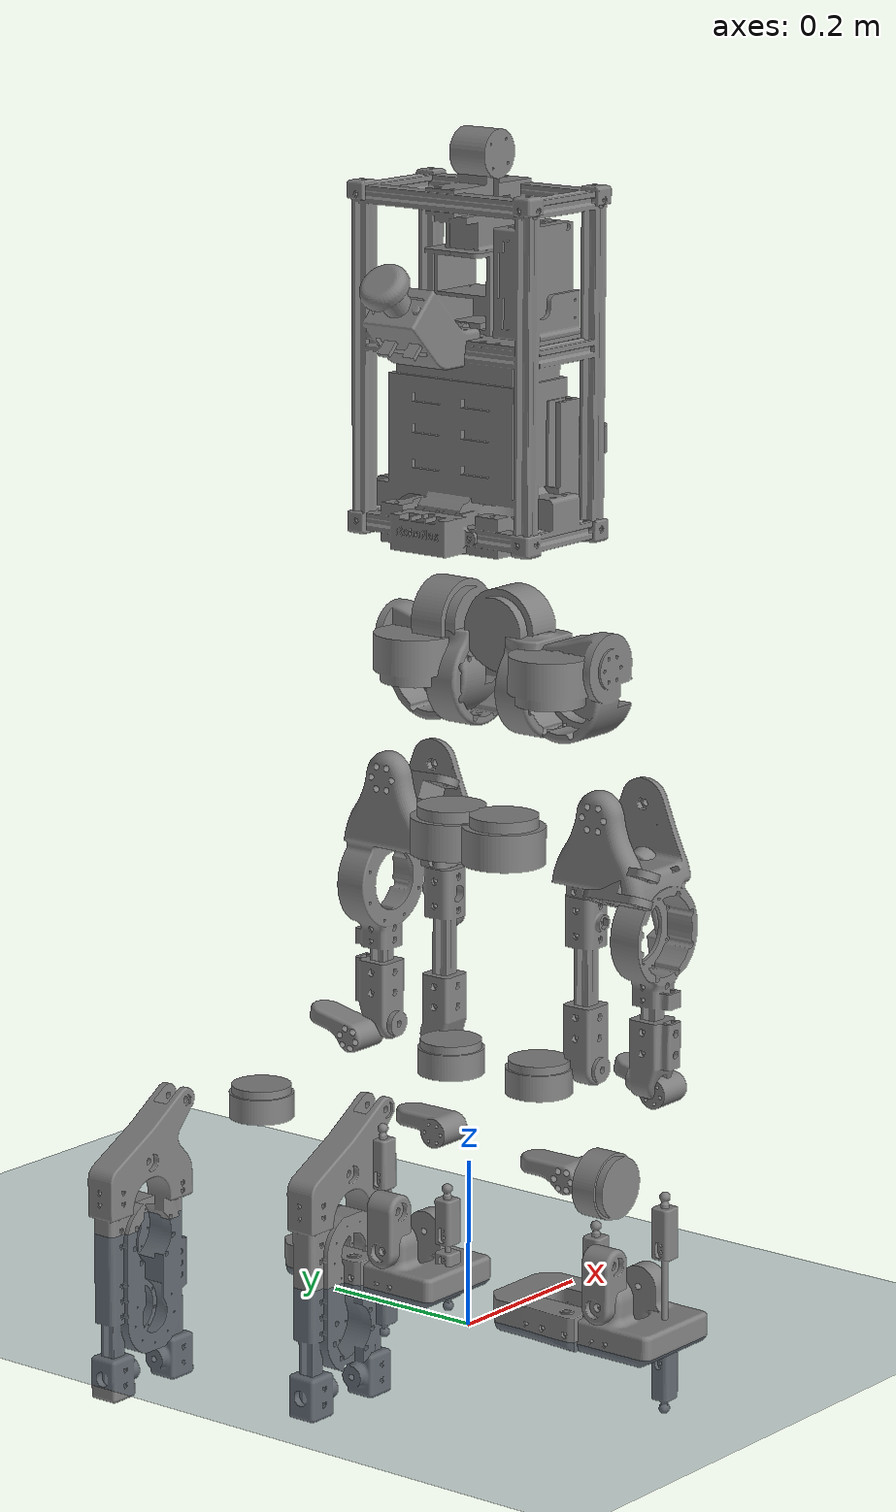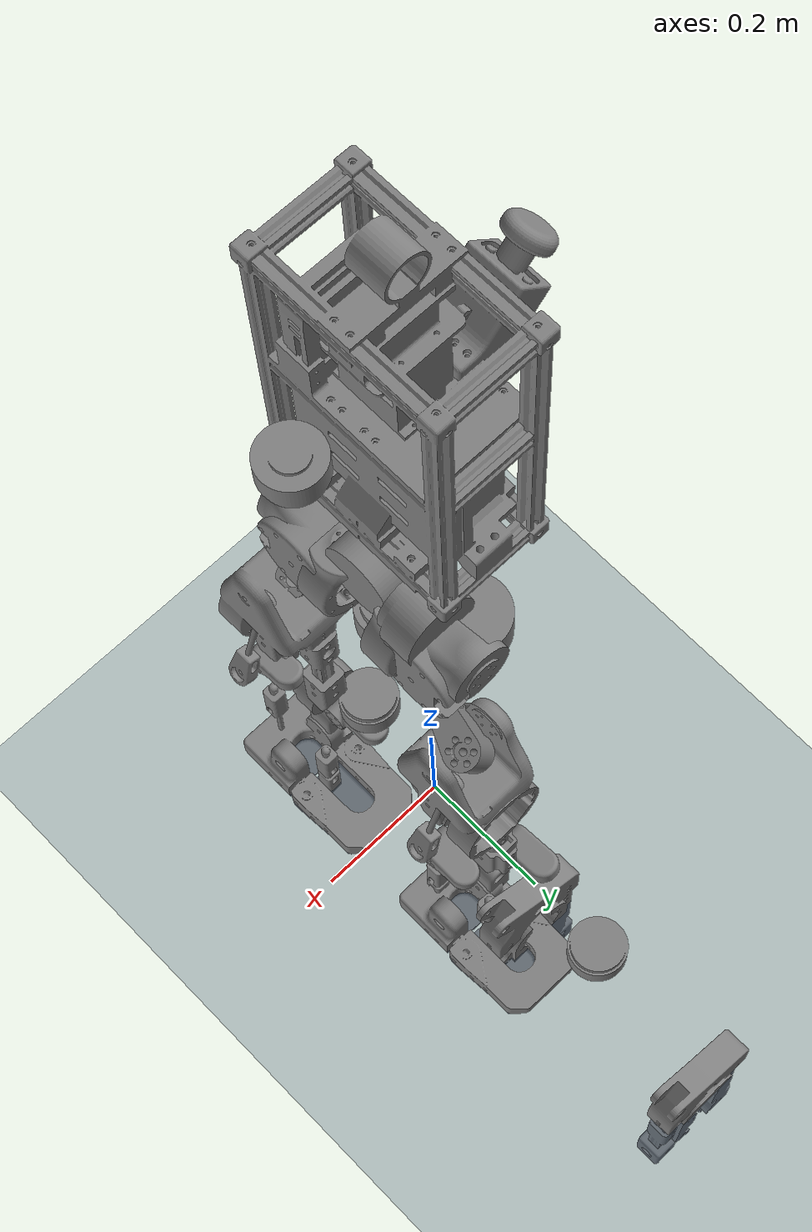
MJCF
<?xml version="1.0"?>
<mujoco model="robonex scene">
  <include file="robonex.xml"/>

  <statistic center="0 0 0.6" extent="1.2"/>

  <visual>
    <headlight diffuse="0.6 0.6 0.6" ambient="0.3 0.3 0.3" specular="0 0 0"/>
    <rgba haze="0.15 0.25 0.35 1"/>
    <global azimuth="140" elevation="-20"/>
  </visual>

  <asset>
    <texture type="skybox" builtin="gradient" rgb1="0.3 0.5 0.7" rgb2="0 0 0" width="512" height="3072"/>
    <texture type="2d" name="groundplane" builtin="checker" mark="edge" rgb1="0.2 0.3 0.4" rgb2="0.1 0.2 0.3"
      markrgb="0.8 0.8 0.8" width="300" height="300"/>
    <material name="groundplane" texture="groundplane" texuniform="true" texrepeat="5 5" reflectance="0.2"/>
  </asset>

  <worldbody>
    <light pos="0 0 3" dir="0 0 -1" directional="true"/>
    <geom name="floor" size="0 0 0.05" type="plane" material="groundplane" condim="3" contype="1" conaffinity="1" friction="0.6 0.6 0.001" solref="0.002 1" solimp="0.99 0.9999 0.0001"/>
  </worldbody>
</mujoco>

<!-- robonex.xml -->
<mujoco model="robonex">
  <compiler angle="radian" meshdir="../../meshes" autolimits="true"/>
  <option timestep="0.001" integrator="implicitfast" cone="elliptic" impratio="10"/>

  <default>
    <joint damping="0.01" armature="0"/>
    <default class="passive">
      <joint damping="0.01" armature="0"/>
    </default>
    <default class="act">
      <joint armature="0"/>
    </default>
    <default class="visual">
      <geom group="2" contype="0" conaffinity="0" density="0"/>
    </default>
    <default class="collision">
      <geom group="3" contype="1" conaffinity="1" condim="3" density="0" rgba="0.6 0.6 0.6 0.4" solref="0.002 1" solimp="0.99 0.9999 0.0001"/>
    </default>
    <default class="motor">
      <position kp="40" kv="2"/>
    </default>
  </default>

  <asset>
    <mesh name="base_link" file="base_link.stl" scale="0.001 0.001 0.001"/>
    <mesh name="l_ankle_coupler_link_a" file="l_ankle_coupler_link_a.stl" scale="0.001 0.001 0.001"/>
    <mesh name="l_ankle_coupler_link_b" file="l_ankle_coupler_link_b.stl" scale="0.001 0.001 0.001"/>
    <mesh name="l_ankle_crank_link_a" file="l_ankle_crank_link_a.stl" scale="0.001 0.001 0.001"/>
    <mesh name="l_ankle_crank_link_b" file="l_ankle_crank_link_b.stl" scale="0.001 0.001 0.001"/>
    <mesh name="l_ankle_link" file="l_ankle_link.stl" scale="0.001 0.001 0.001"/>
    <mesh name="l_foot" file="l_foot.stl" scale="0.001 0.001 0.001"/>
    <mesh name="l_hip_pitch_link" file="l_hip_pitch_link.stl" scale="0.001 0.001 0.001"/>
    <mesh name="l_hip_roll_link" file="l_hip_roll_link.stl" scale="0.001 0.001 0.001"/>
    <mesh name="l_hip_yaw_link" file="l_hip_yaw_link.stl" scale="0.001 0.001 0.001"/>
    <mesh name="l_knee_coupler_link" file="l_knee_coupler_link.stl" scale="0.001 0.001 0.001"/>
    <mesh name="l_knee_crank_link" file="l_knee_crank_link.stl" scale="0.001 0.001 0.001"/>
    <mesh name="l_knee_link" file="l_knee_link.stl" scale="0.001 0.001 0.001"/>
    <mesh name="r_ankle_coupler_link_a" file="r_ankle_coupler_link_a.stl" scale="0.001 0.001 0.001"/>
    <mesh name="r_ankle_coupler_link_b" file="r_ankle_coupler_link_b.stl" scale="0.001 0.001 0.001"/>
    <mesh name="r_ankle_crank_link_a" file="r_ankle_crank_link_a.stl" scale="0.001 0.001 0.001"/>
    <mesh name="r_ankle_crank_link_b" file="r_ankle_crank_link_b.stl" scale="0.001 0.001 0.001"/>
    <mesh name="r_ankle_link" file="r_ankle_link.stl" scale="0.001 0.001 0.001"/>
    <mesh name="r_foot" file="r_foot.stl" scale="0.001 0.001 0.001"/>
    <mesh name="r_hip_pitch_link" file="r_hip_pitch_link.stl" scale="0.001 0.001 0.001"/>
    <mesh name="r_hip_roll_link" file="r_hip_roll_link.stl" scale="0.001 0.001 0.001"/>
    <mesh name="r_hip_yaw_link" file="r_hip_yaw_link.stl" scale="0.001 0.001 0.001"/>
    <mesh name="r_knee_coupler_link" file="r_knee_coupler_link.stl" scale="0.001 0.001 0.001"/>
    <mesh name="r_knee_crank_link" file="r_knee_crank_link.stl" scale="0.001 0.001 0.001"/>
    <mesh name="r_knee_link" file="r_knee_link.stl" scale="0.001 0.001 0.001"/>
    <mesh name="rs02_l_ankle_a" file="rs02_l_ankle_a.stl" scale="0.001 0.001 0.001"/>
    <mesh name="rs02_l_ankle_b" file="rs02_l_ankle_b.stl" scale="0.001 0.001 0.001"/>
    <mesh name="rs02_l_hip_yaw" file="rs02_l_hip_yaw.stl" scale="0.001 0.001 0.001"/>
    <mesh name="rs02_r_ankle_a" file="rs02_r_ankle_a.stl" scale="0.001 0.001 0.001"/>
    <mesh name="rs02_r_ankle_b" file="rs02_r_ankle_b.stl" scale="0.001 0.001 0.001"/>
    <mesh name="rs02_r_hip_yaw" file="rs02_r_hip_yaw.stl" scale="0.001 0.001 0.001"/>
    <mesh name="rs03_l_hip_pitch" file="rs03_l_hip_pitch.stl" scale="0.001 0.001 0.001"/>
    <mesh name="rs03_l_hip_roll" file="rs03_l_hip_roll.stl" scale="0.001 0.001 0.001"/>
    <mesh name="rs03_l_knee" file="rs03_l_knee.stl" scale="0.001 0.001 0.001"/>
    <mesh name="rs03_r_hip_pitch" file="rs03_r_hip_pitch.stl" scale="0.001 0.001 0.001"/>
    <mesh name="rs03_r_hip_roll" file="rs03_r_hip_roll.stl" scale="0.001 0.001 0.001"/>
    <mesh name="rs03_r_knee" file="rs03_r_knee.stl" scale="0.001 0.001 0.001"/>
  </asset>

  <worldbody>
    <body name="base_link" pos="0 0 1.085">
      <freejoint name="root"/>
      <inertial pos="0.032843 0.000297 -0.045593" mass="6.80147" fullinertia="0.17694424 0.14872054 0.08710167 -5.475e-05 0.01914405 -0.00012648"/>
      <geom type="mesh" mesh="base_link" pos="0 0 0" class="visual"/>
      <geom type="mesh" mesh="base_link" pos="0 0 0" class="collision"/>
      <geom type="mesh" mesh="rs02_r_hip_yaw" pos="0.060424 -0.05 -0.17975" quat="-1.17016e-07 -0.67559 0.737277 1.277e-07" class="visual"/>
      <geom type="mesh" mesh="rs02_r_hip_yaw" pos="0.060424 -0.05 -0.17975" quat="-1.17016e-07 -0.67559 0.737277 1.277e-07" class="collision"/>
      <geom type="mesh" mesh="rs02_l_hip_yaw" pos="0.060424 0.05 -0.17975" quat="-1.17016e-07 -0.67559 0.737277 1.277e-07" class="visual"/>
      <geom type="mesh" mesh="rs02_l_hip_yaw" pos="0.060424 0.05 -0.17975" quat="-1.17016e-07 -0.67559 0.737277 1.277e-07" class="collision"/>
      <body name="l_hip_yaw_link" pos="0.060424 0.05 -0.20245">
        <joint name="l_hip_yaw_joint" type="hinge" axis="0 0 1" range="-1.65806 1.65806" armature="0.0042" frictionloss="0" damping="0" class="act"/>
        <inertial pos="-3.8e-05 0.023069 -0.059394" mass="0.9768" fullinertia="0.00108483 0.00144231 0.001013 -7.1e-07 -7.1e-07 2.234e-05"/>
        <geom type="mesh" mesh="l_hip_yaw_link" pos="2e-06 0.0001 -0.059" quat="-1.73205e-07 -0 0 1" class="visual"/>
        <geom type="mesh" mesh="l_hip_yaw_link" pos="2e-06 0.0001 -0.059" quat="-1.73205e-07 -0 0 1" class="collision"/>
        <geom type="mesh" mesh="rs03_l_hip_pitch" pos="2e-06 0.0194 -0.06001" quat="0.5 -0.5 -0.5 -0.5" class="visual"/>
        <geom type="mesh" mesh="rs03_l_hip_pitch" pos="2e-06 0.0194 -0.06001" quat="0.5 -0.5 -0.5 -0.5" class="collision"/>
        <body name="l_hip_pitch_link" pos="1e-06 0.0477 -0.0605">
          <joint name="l_hip_pitch_joint" type="hinge" axis="0 -1 0" range="-1.74533 1.74533" armature="0.02" frictionloss="0" damping="0" class="act"/>
          <inertial pos="-0.003785 0.060976 -0.032577" mass="1.04436" fullinertia="0.00161401 0.00123883 0.00118137 9.18e-06 -6.72e-06 6.937e-05"/>
          <geom type="mesh" mesh="l_hip_pitch_link" pos="-0.00455 0.0599 -0.02575" quat="-1.73205e-07 -0 0 1" class="visual"/>
          <geom type="mesh" mesh="l_hip_pitch_link" pos="-0.00455 0.0599 -0.02575" quat="-1.73205e-07 -0 0 1" class="collision"/>
          <geom type="mesh" mesh="rs03_l_hip_roll" pos="-0.0058 0.0623 -0.03351" quat="-1.22475e-07 -0.707107 1.22474e-07 -0.707107" class="visual"/>
          <geom type="mesh" mesh="rs03_l_hip_roll" pos="-0.0058 0.0623 -0.03351" quat="-1.22475e-07 -0.707107 1.22474e-07 -0.707107" class="collision"/>
          <body name="l_hip_roll_link" pos="0.0225 0.0623 -0.034">
            <joint name="l_hip_roll_joint" type="hinge" axis="-1 0 0" range="-2.14676 0.453786" armature="0.02" frictionloss="0" damping="0" class="act"/>
            <inertial pos="-0.034473 -0.032586 -0.198268" mass="1.71574" fullinertia="0.01832064 0.01711211 0.00412151 -1.851e-05 -6.908e-05 -0.00294612"/>
            <geom type="mesh" mesh="l_hip_roll_link" pos="-0.0348 -0.007 -0.16" quat="-1.73205e-07 0 -0 -1" class="visual"/>
            <geom type="mesh" mesh="l_hip_roll_link" pos="-0.0348 -0.007 -0.16" quat="-1.73205e-07 0 -0 -1" class="collision"/>
            <geom type="mesh" mesh="rs03_l_knee" pos="-0.03431 -0.0603 -0.255" quat="0.707107 -0.707107 0 0" class="visual"/>
            <geom type="mesh" mesh="rs03_l_knee" pos="-0.03431 -0.0603 -0.255" quat="0.707107 -0.707107 0 0" class="collision"/>
            <body name="l_knee_link" pos="-0.0348 -0.0255 -0.34">
              <joint name="l_knee_joint" type="hinge" axis="0 -1 0" range="-3.14159 3.14159" class="passive"/>
              <inertial pos="0.001621 0.025016 -0.172019" mass="1.71687" fullinertia="0.01717778 0.01952815 0.00292332 1.7e-07 -0.00118827 -1.549e-05"/>
              <geom type="mesh" mesh="l_knee_link" pos="0 0.42 -0.3696" class="visual"/>
              <geom type="mesh" mesh="l_knee_link" pos="0 0.42 -0.3696" class="collision"/>
              <geom type="mesh" mesh="rs02_l_ankle_a" pos="0 0.0252 -0.1445" quat="0.707107 -0.707107 0 0" class="visual"/>
              <geom type="mesh" mesh="rs02_l_ankle_a" pos="0 0.0252 -0.1445" quat="0.707107 -0.707107 0 0" class="collision"/>
              <geom type="mesh" mesh="rs02_l_ankle_b" pos="0 0.0248 -0.2555" quat="0.707107 0.707107 0 0" class="visual"/>
              <geom type="mesh" mesh="rs02_l_ankle_b" pos="0 0.0248 -0.2555" quat="0.707107 0.707107 0 0" class="collision"/>
              <body name="l_ankle_crank_link_a" pos="0 0.0479 -0.1445">
                <joint name="l_ankle_upper_joint" type="hinge" axis="0 -1 0" range="-0.610865 0.575959" armature="0.0042" frictionloss="0" damping="0" class="act"/>
                <inertial pos="0.021493 0.024513 0.00427" mass="0.08456" fullinertia="1.958e-05 5.234e-05 5.951e-05 -3.25e-06 -6.24e-06 -6.5e-07"/>
                <geom type="mesh" mesh="l_ankle_crank_link_a" pos="0.026 0.0234 0" quat="0.707107 0 0 0.707107" class="visual"/>
                <geom type="mesh" mesh="l_ankle_crank_link_a" pos="0.026 0.0234 0" quat="0.707107 0 0 0.707107" class="collision"/>
                <body name="l_ankle_coupler_link_b" pos="0.05 0.0263 0">
                  <joint name="l_ankle_coupler_joint_b_x" type="hinge" axis="1 0 0" range="-0.261799 0.261799" limited="true" solreflimit="0.004 1" solimplimit="0.99 0.9999 0.0001" class="passive"/>
                  <joint name="l_ankle_coupler_joint_b_y" type="hinge" axis="0 1 0" class="passive"/>
                  <joint name="l_ankle_coupler_joint_b_z" type="hinge" axis="0 0 1" range="-0.261799 0.261799" limited="true" solreflimit="0.004 1" solimplimit="0.99 0.9999 0.0001" class="passive"/>
                  <inertial pos="0 0 -0.129" mass="0.08512" fullinertia="0.00066004 0.00065964 7.38e-06 0 0 0"/>
                  <geom type="mesh" mesh="l_ankle_coupler_link_b" pos="0 0 -0.129" class="visual"/>
                  <geom type="mesh" mesh="l_ankle_coupler_link_b" pos="0 0 -0.129" class="collision"/>
                </body>
              </body>
              <body name="l_ankle_crank_link_b" pos="0 0.0021 -0.2555">
                <joint name="l_ankle_lower_joint" type="hinge" axis="0 1 0" range="-0.610865 0.575959" armature="0.0042" frictionloss="0" damping="0" class="act"/>
                <inertial pos="0.021493 -0.024513 0.00427" mass="0.08456" fullinertia="1.958e-05 5.234e-05 5.951e-05 3.25e-06 -6.24e-06 6.5e-07"/>
                <geom type="mesh" mesh="l_ankle_crank_link_b" pos="0.026 -0.0224 -1e-06" quat="0.707107 0 0 0.707107" class="visual"/>
                <geom type="mesh" mesh="l_ankle_crank_link_b" pos="0.026 -0.0224 -1e-06" quat="0.707107 0 0 0.707107" class="collision"/>
                <body name="l_ankle_coupler_link_a" pos="0.05 -0.0263 0">
                  <joint name="l_ankle_coupler_joint_a_x" type="hinge" axis="1 0 0" range="-0.261799 0.261799" limited="true" solreflimit="0.004 1" solimplimit="0.99 0.9999 0.0001" class="passive"/>
                  <joint name="l_ankle_coupler_joint_a_y" type="hinge" axis="0 1 0" class="passive"/>
                  <joint name="l_ankle_coupler_joint_a_z" type="hinge" axis="0 0 1" range="-0.261799 0.261799" limited="true" solreflimit="0.004 1" solimplimit="0.99 0.9999 0.0001" class="passive"/>
                  <inertial pos="0 0 -0.0735" mass="0.0741" fullinertia="0.0001211 0.00012069 6.8e-06 0 0 0"/>
                  <geom type="mesh" mesh="l_ankle_coupler_link_a" pos="0 0 -0.0735" class="visual"/>
                  <geom type="mesh" mesh="l_ankle_coupler_link_a" pos="0 0 -0.0735" class="collision"/>
                </body>
              </body>
              <body name="l_ankle_link" pos="0.02 0.025 -0.3265">
                <joint name="l_ankle_roll_joint" type="hinge" axis="1 0 0" range="-3.14159 3.14159" class="passive"/>
                <inertial pos="-0.020126 0 -0.025484" mass="0.13119" fullinertia="8.904e-05 8.901e-05 3.296e-05 0 4.2e-07 0"/>
                <geom type="mesh" mesh="l_ankle_link" pos="-0.02 0 -0.025" quat="0.707107 0 0 -0.707107" class="visual"/>
                <geom type="mesh" mesh="l_ankle_link" pos="-0.02 0 -0.025" quat="0.707107 0 0 -0.707107" class="collision"/>
                <body name="l_foot" pos="-0.02 -0.02 -0.05">
                  <joint name="l_ankle_pitch_joint" type="hinge" axis="0 -1 0" range="-3.14159 3.14159" class="passive"/>
                  <inertial pos="0.036405 0.020073 -0.039754" mass="0.78964" fullinertia="0.00144137 0.0041391 0.00501965 2.38e-06 0.0001518 -2.54e-06"/>
                  <geom type="mesh" mesh="l_foot" pos="0.045 0.02 -0.0202" quat="0.707107 0 0 0.707107" class="visual"/>
                  <geom type="mesh" mesh="l_foot" pos="0.045 0.02 -0.0202" quat="0.707107 0 0 0.707107" class="collision" friction="0.6 0.6 0.001"/>
                </body>
              </body>
            </body>
            <body name="l_knee_crank_link" pos="-0.0348 -0.032 -0.255">
              <joint name="l_knee_pitch_joint" type="hinge" axis="0 -1 0" range="-1.50098 0.942478" armature="0.02" frictionloss="0" damping="0" class="act"/>
              <inertial pos="0.013738 0.029543 0.030625" mass="0.09538" fullinertia="0.0001081 0.00011887 4.67e-05 -2.41e-06 -3.391e-05 -5.38e-06"/>
              <geom type="mesh" mesh="l_knee_crank_link" pos="0.019334 0.026 0.041464" quat="0.596368 0.379928 -0.379928 -0.596368" class="visual"/>
              <geom type="mesh" mesh="l_knee_crank_link" pos="0.019334 0.026 0.041464" quat="0.596368 0.379928 -0.379928 -0.596368" class="collision"/>
              <body name="l_knee_coupler_link" pos="0.042262 0.021 0.090631">
                <joint name="l_knee_coupler_joint_a" type="hinge" axis="0 -1 0" range="-3.14159 3.14159" class="passive"/>
                <inertial pos="0.023792 0.01 -0.062632" mass="0.0579" fullinertia="0.00016138 0.00018632 2.851e-05 0 5.899e-05 0"/>
                <geom type="mesh" mesh="l_knee_coupler_link" pos="0.023792 0.01 -0.062633" quat="0.69549 0.127646 -0.127646 -0.69549" class="visual"/>
                <geom type="mesh" mesh="l_knee_coupler_link" pos="0.023792 0.01 -0.062633" quat="0.69549 0.127646 -0.127646 -0.69549" class="collision"/>
              </body>
            </body>
          </body>
        </body>
      </body>
      <body name="r_hip_yaw_link" pos="0.060424 -0.05 -0.20245">
        <joint name="r_hip_yaw_joint" type="hinge" axis="0 0 1" range="-1.65806 1.65806" armature="0.0042" frictionloss="0" damping="0" class="act"/>
        <inertial pos="3.8e-05 -0.023069 -0.059394" mass="0.9768" fullinertia="0.00108483 0.00144231 0.001013 -7.1e-07 7.1e-07 -2.234e-05"/>
        <geom type="mesh" mesh="r_hip_yaw_link" pos="-2e-06 -0.0001 -0.059" class="visual"/>
        <geom type="mesh" mesh="r_hip_yaw_link" pos="-2e-06 -0.0001 -0.059" class="collision"/>
        <geom type="mesh" mesh="rs03_r_hip_pitch" pos="-2e-06 -0.0194 -0.06001" quat="0.5 0.5 -0.5 0.5" class="visual"/>
        <geom type="mesh" mesh="rs03_r_hip_pitch" pos="-2e-06 -0.0194 -0.06001" quat="0.5 0.5 -0.5 0.5" class="collision"/>
        <body name="r_hip_pitch_link" pos="-1e-06 -0.0477 -0.0605">
          <joint name="r_hip_pitch_joint" type="hinge" axis="0 1 0" range="-1.74533 1.74533" armature="0.02" frictionloss="0" damping="0" class="act"/>
          <inertial pos="-0.003774 -0.061283 -0.032564" mass="1.04436" fullinertia="0.00161565 0.00123875 0.00118221 -8.22e-06 -6.63e-06 -6.896e-05"/>
          <geom type="mesh" mesh="r_hip_pitch_link" pos="-0.00455 -0.0601 -0.02575" quat="-1.73205e-07 0 -0 -1" class="visual"/>
          <geom type="mesh" mesh="r_hip_pitch_link" pos="-0.00455 -0.0601 -0.02575" quat="-1.73205e-07 0 -0 -1" class="collision"/>
          <geom type="mesh" mesh="rs03_r_hip_roll" pos="-0.0058 -0.0627 -0.03351" quat="-1.22475e-07 -0.707107 1.22474e-07 -0.707107" class="visual"/>
          <geom type="mesh" mesh="rs03_r_hip_roll" pos="-0.0058 -0.0627 -0.03351" quat="-1.22475e-07 -0.707107 1.22474e-07 -0.707107" class="collision"/>
          <body name="r_hip_roll_link" pos="0.0225 -0.0627 -0.034">
            <joint name="r_hip_roll_joint" type="hinge" axis="-1 0 0" range="-0.453786 2.14676" armature="0.02" frictionloss="0" damping="0" class="act"/>
            <inertial pos="-0.034561 0.0326 -0.198312" mass="1.71574" fullinertia="0.01832691 0.01712084 0.00411921 2.205e-05 -7.902e-05 0.00294902"/>
            <geom type="mesh" mesh="r_hip_roll_link" pos="-0.0348 0.007 -0.16" quat="-1.73205e-07 0 -0 -1" class="visual"/>
            <geom type="mesh" mesh="r_hip_roll_link" pos="-0.0348 0.007 -0.16" quat="-1.73205e-07 0 -0 -1" class="collision"/>
            <geom type="mesh" mesh="rs03_r_knee" pos="-0.03431 0.0603 -0.255" quat="0.707107 0.707107 0 0" class="visual"/>
            <geom type="mesh" mesh="rs03_r_knee" pos="-0.03431 0.0603 -0.255" quat="0.707107 0.707107 0 0" class="collision"/>
            <body name="r_knee_link" pos="-0.0348 0.0255 -0.34">
              <joint name="r_knee_joint" type="hinge" axis="0 1 0" range="-3.14159 3.14159" class="passive"/>
              <inertial pos="0.001621 -0.025013 -0.172019" mass="1.71687" fullinertia="0.01717476 0.01952513 0.00292332 1.7e-06 -0.00118827 2.224e-05"/>
              <geom type="mesh" mesh="r_knee_link" pos="0 0.37 -0.32" class="visual"/>
              <geom type="mesh" mesh="r_knee_link" pos="0 0.37 -0.32" class="collision"/>
              <geom type="mesh" mesh="rs02_r_ankle_a" pos="0 -0.0252 -0.1445" quat="0.707107 0.707107 0 0" class="visual"/>
              <geom type="mesh" mesh="rs02_r_ankle_a" pos="0 -0.0252 -0.1445" quat="0.707107 0.707107 0 0" class="collision"/>
              <geom type="mesh" mesh="rs02_r_ankle_b" pos="0 -0.0248 -0.2555" quat="0.707107 -0.707107 0 0" class="visual"/>
              <geom type="mesh" mesh="rs02_r_ankle_b" pos="0 -0.0248 -0.2555" quat="0.707107 -0.707107 0 0" class="collision"/>
              <body name="r_ankle_crank_link_a" pos="0 -0.0021 -0.2555">
                <joint name="r_ankle_lower_joint" type="hinge" axis="0 -1 0" range="-0.575959 0.610865" armature="0.0042" frictionloss="0" damping="0" class="act"/>
                <inertial pos="0.021493 0.024513 0.00427" mass="0.08456" fullinertia="1.958e-05 5.234e-05 5.951e-05 -3.25e-06 -6.24e-06 -6.5e-07"/>
                <geom type="mesh" mesh="r_ankle_crank_link_a" pos="0.026 0.0234 0" quat="0.707107 0 0 0.707107" class="visual"/>
                <geom type="mesh" mesh="r_ankle_crank_link_a" pos="0.026 0.0234 0" quat="0.707107 0 0 0.707107" class="collision"/>
                <body name="r_ankle_coupler_link_a" pos="0.05 0.0263 0">
                  <joint name="r_ankle_coupler_joint_a_x" type="hinge" axis="1 0 0" range="-0.261799 0.261799" limited="true" solreflimit="0.004 1" solimplimit="0.99 0.9999 0.0001" class="passive"/>
                  <joint name="r_ankle_coupler_joint_a_y" type="hinge" axis="0 1 0" class="passive"/>
                  <joint name="r_ankle_coupler_joint_a_z" type="hinge" axis="0 0 1" range="-0.261799 0.261799" limited="true" solreflimit="0.004 1" solimplimit="0.99 0.9999 0.0001" class="passive"/>
                  <inertial pos="0 0 -0.0735" mass="0.0741" fullinertia="0.0001211 0.00012069 6.8e-06 0 0 0"/>
                  <geom type="mesh" mesh="r_ankle_coupler_link_a" pos="0 0 -0.0735" class="visual"/>
                  <geom type="mesh" mesh="r_ankle_coupler_link_a" pos="0 0 -0.0735" class="collision"/>
                </body>
              </body>
              <body name="r_ankle_crank_link_b" pos="0 -0.0479 -0.1445">
                <joint name="r_ankle_upper_joint" type="hinge" axis="0 1 0" range="-0.575959 0.610865" armature="0.0042" frictionloss="0" damping="0" class="act"/>
                <inertial pos="0.021493 -0.024513 0.00427" mass="0.08456" fullinertia="1.958e-05 5.234e-05 5.951e-05 3.25e-06 -6.24e-06 6.5e-07"/>
                <geom type="mesh" mesh="r_ankle_crank_link_b" pos="0.026 -0.0224 -1e-06" quat="0.707107 0 0 0.707107" class="visual"/>
                <geom type="mesh" mesh="r_ankle_crank_link_b" pos="0.026 -0.0224 -1e-06" quat="0.707107 0 0 0.707107" class="collision"/>
                <body name="r_ankle_coupler_link_b" pos="0.05 -0.0263 0">
                  <joint name="r_ankle_coupler_joint_b_x" type="hinge" axis="1 0 0" range="-0.261799 0.261799" limited="true" solreflimit="0.004 1" solimplimit="0.99 0.9999 0.0001" class="passive"/>
                  <joint name="r_ankle_coupler_joint_b_y" type="hinge" axis="0 1 0" class="passive"/>
                  <joint name="r_ankle_coupler_joint_b_z" type="hinge" axis="0 0 1" range="-0.261799 0.261799" limited="true" solreflimit="0.004 1" solimplimit="0.99 0.9999 0.0001" class="passive"/>
                  <inertial pos="0 0 -0.129" mass="0.08512" fullinertia="0.00066004 0.00065964 7.38e-06 0 0 0"/>
                  <geom type="mesh" mesh="r_ankle_coupler_link_b" pos="0 0 -0.129" class="visual"/>
                  <geom type="mesh" mesh="r_ankle_coupler_link_b" pos="0 0 -0.129" class="collision"/>
                </body>
              </body>
              <body name="r_ankle_link" pos="0.02 -0.025 -0.3265">
                <joint name="r_ankle_roll_joint" type="hinge" axis="1 0 0" range="-3.14159 3.14159" class="passive"/>
                <inertial pos="-0.020126 0 -0.025484" mass="0.13119" fullinertia="8.904e-05 8.901e-05 3.296e-05 0 4.2e-07 0"/>
                <geom type="mesh" mesh="r_ankle_link" pos="-0.02 0 -0.025" quat="0.707107 0 0 -0.707107" class="visual"/>
                <geom type="mesh" mesh="r_ankle_link" pos="-0.02 0 -0.025" quat="0.707107 0 0 -0.707107" class="collision"/>
                <body name="r_foot" pos="-0.02 -0.0215 -0.05">
                  <joint name="r_ankle_pitch_joint" type="hinge" axis="0 -1 0" range="-3.14159 3.14159" class="passive"/>
                  <inertial pos="0.036405 0.021573 -0.039754" mass="0.78964" fullinertia="0.00144137 0.0041391 0.00501965 2.38e-06 0.0001518 -2.54e-06"/>
                  <geom type="mesh" mesh="r_foot" pos="0.045 0.0215 -0.0202" quat="0.707107 0 0 0.707107" class="visual"/>
                  <geom type="mesh" mesh="r_foot" pos="0.045 0.0215 -0.0202" quat="0.707107 0 0 0.707107" class="collision" friction="0.6 0.6 0.001"/>
                </body>
              </body>
            </body>
            <body name="r_knee_crank_link" pos="-0.0348 0.032 -0.255">
              <joint name="r_knee_pitch_joint" type="hinge" axis="0 1 0" range="-0.942478 1.50098" armature="0.02" frictionloss="0" damping="0" class="act"/>
              <inertial pos="0.013738 -0.029543 0.030625" mass="0.09538" fullinertia="0.0001081 0.00011887 4.67e-05 2.41e-06 -3.391e-05 5.38e-06"/>
              <geom type="mesh" mesh="r_knee_crank_link" pos="0.019335 -0.026 0.041464" quat="0.596368 0.379928 -0.379928 -0.596368" class="visual"/>
              <geom type="mesh" mesh="r_knee_crank_link" pos="0.019335 -0.026 0.041464" quat="0.596368 0.379928 -0.379928 -0.596368" class="collision"/>
              <body name="r_knee_coupler_link" pos="0.042262 -0.021 0.090631">
                <joint name="r_knee_coupler_joint_a" type="hinge" axis="0 -1 0" range="-3.14159 3.14159" class="passive"/>
                <inertial pos="0.023792 -0.01 -0.062632" mass="0.0579" fullinertia="0.00016138 0.00018632 2.851e-05 0 5.899e-05 0"/>
                <geom type="mesh" mesh="r_knee_coupler_link" pos="0.023792 -0.01 -0.062633" quat="0.69549 -0.127646 -0.127646 0.69549" class="visual"/>
                <geom type="mesh" mesh="r_knee_coupler_link" pos="0.023792 -0.01 -0.062633" quat="0.69549 -0.127646 -0.127646 0.69549" class="collision"/>
              </body>
            </body>
          </body>
        </body>
      </body>
    </body>
  </worldbody>

  <equality>
    <connect name="l_knee_coupler_joint_b_0" body1="l_knee_coupler_link" body2="l_knee_link" anchor="0.047584 -0.01 -0.125267" solref="0.004 1" solimp="0.99 0.9999 0.0001"/>
    <connect name="l_knee_coupler_joint_b_1" body1="l_knee_coupler_link" body2="l_knee_link" anchor="0.047584 0.01 -0.125267" solref="0.004 1" solimp="0.99 0.9999 0.0001"/>
    <connect name="r_knee_coupler_joint_b_0" body1="r_knee_coupler_link" body2="r_knee_link" anchor="0.047584 0.01 -0.125267" solref="0.004 1" solimp="0.99 0.9999 0.0001"/>
    <connect name="r_knee_coupler_joint_b_1" body1="r_knee_coupler_link" body2="r_knee_link" anchor="0.047584 -0.01 -0.125267" solref="0.004 1" solimp="0.99 0.9999 0.0001"/>
    <connect name="l_ankle_ball_c" body1="l_ankle_coupler_link_a" body2="l_foot" anchor="0 0 -0.147" solref="0.004 1" solimp="0.99 0.9999 0.0001"/>
    <connect name="l_ankle_ball_d" body1="l_ankle_coupler_link_b" body2="l_foot" anchor="0 0 -0.258" solref="0.004 1" solimp="0.99 0.9999 0.0001"/>
    <connect name="r_ankle_ball_c" body1="r_ankle_coupler_link_a" body2="r_foot" anchor="0 0 -0.147" solref="0.004 1" solimp="0.99 0.9999 0.0001"/>
    <connect name="r_ankle_ball_d" body1="r_ankle_coupler_link_b" body2="r_foot" anchor="0 0 -0.258" solref="0.004 1" solimp="0.99 0.9999 0.0001"/>
  </equality>

  <contact>
    <exclude body1="base_link" body2="l_hip_pitch_link"/>
    <exclude body1="base_link" body2="l_hip_yaw_link"/>
    <exclude body1="base_link" body2="r_hip_pitch_link"/>
    <exclude body1="base_link" body2="r_hip_yaw_link"/>
    <exclude body1="l_ankle_coupler_link_a" body2="l_ankle_coupler_link_b"/>
    <exclude body1="l_ankle_coupler_link_a" body2="l_ankle_crank_link_b"/>
    <exclude body1="l_ankle_coupler_link_a" body2="l_ankle_link"/>
    <exclude body1="l_ankle_coupler_link_a" body2="l_foot"/>
    <exclude body1="l_ankle_coupler_link_a" body2="l_knee_link"/>
    <exclude body1="l_ankle_coupler_link_b" body2="l_ankle_crank_link_a"/>
    <exclude body1="l_ankle_coupler_link_b" body2="l_ankle_link"/>
    <exclude body1="l_ankle_coupler_link_b" body2="l_foot"/>
    <exclude body1="l_ankle_coupler_link_b" body2="l_knee_link"/>
    <exclude body1="l_ankle_crank_link_a" body2="l_ankle_crank_link_b"/>
    <exclude body1="l_ankle_crank_link_a" body2="l_ankle_link"/>
    <exclude body1="l_ankle_crank_link_a" body2="l_foot"/>
    <exclude body1="l_ankle_crank_link_a" body2="l_hip_roll_link"/>
    <exclude body1="l_ankle_crank_link_a" body2="l_knee_coupler_link"/>
    <exclude body1="l_ankle_crank_link_a" body2="l_knee_link"/>
    <exclude body1="l_ankle_crank_link_b" body2="l_ankle_link"/>
    <exclude body1="l_ankle_crank_link_b" body2="l_foot"/>
    <exclude body1="l_ankle_crank_link_b" body2="l_hip_roll_link"/>
    <exclude body1="l_ankle_crank_link_b" body2="l_knee_coupler_link"/>
    <exclude body1="l_ankle_crank_link_b" body2="l_knee_link"/>
    <exclude body1="l_ankle_link" body2="l_foot"/>
    <exclude body1="l_ankle_link" body2="l_hip_roll_link"/>
    <exclude body1="l_ankle_link" body2="l_knee_coupler_link"/>
    <exclude body1="l_ankle_link" body2="l_knee_link"/>
    <exclude body1="l_foot" body2="l_knee_link"/>
    <exclude body1="l_hip_pitch_link" body2="l_hip_roll_link"/>
    <exclude body1="l_hip_pitch_link" body2="l_hip_yaw_link"/>
    <exclude body1="l_hip_pitch_link" body2="l_knee_crank_link"/>
    <exclude body1="l_hip_pitch_link" body2="l_knee_link"/>
    <exclude body1="l_hip_roll_link" body2="l_hip_yaw_link"/>
    <exclude body1="l_hip_roll_link" body2="l_knee_coupler_link"/>
    <exclude body1="l_hip_roll_link" body2="l_knee_crank_link"/>
    <exclude body1="l_hip_roll_link" body2="l_knee_link"/>
    <exclude body1="l_hip_yaw_link" body2="r_hip_yaw_link"/>
    <exclude body1="l_knee_coupler_link" body2="l_knee_crank_link"/>
    <exclude body1="l_knee_coupler_link" body2="l_knee_link"/>
    <exclude body1="l_knee_crank_link" body2="l_knee_link"/>
    <exclude body1="r_ankle_coupler_link_a" body2="r_ankle_coupler_link_b"/>
    <exclude body1="r_ankle_coupler_link_a" body2="r_ankle_crank_link_a"/>
    <exclude body1="r_ankle_coupler_link_a" body2="r_ankle_link"/>
    <exclude body1="r_ankle_coupler_link_a" body2="r_foot"/>
    <exclude body1="r_ankle_coupler_link_a" body2="r_knee_link"/>
    <exclude body1="r_ankle_coupler_link_b" body2="r_ankle_crank_link_b"/>
    <exclude body1="r_ankle_coupler_link_b" body2="r_ankle_link"/>
    <exclude body1="r_ankle_coupler_link_b" body2="r_foot"/>
    <exclude body1="r_ankle_coupler_link_b" body2="r_knee_link"/>
    <exclude body1="r_ankle_crank_link_a" body2="r_ankle_crank_link_b"/>
    <exclude body1="r_ankle_crank_link_a" body2="r_ankle_link"/>
    <exclude body1="r_ankle_crank_link_a" body2="r_foot"/>
    <exclude body1="r_ankle_crank_link_a" body2="r_hip_roll_link"/>
    <exclude body1="r_ankle_crank_link_a" body2="r_knee_coupler_link"/>
    <exclude body1="r_ankle_crank_link_a" body2="r_knee_link"/>
    <exclude body1="r_ankle_crank_link_b" body2="r_ankle_link"/>
    <exclude body1="r_ankle_crank_link_b" body2="r_foot"/>
    <exclude body1="r_ankle_crank_link_b" body2="r_hip_roll_link"/>
    <exclude body1="r_ankle_crank_link_b" body2="r_knee_coupler_link"/>
    <exclude body1="r_ankle_crank_link_b" body2="r_knee_link"/>
    <exclude body1="r_ankle_link" body2="r_foot"/>
    <exclude body1="r_ankle_link" body2="r_hip_roll_link"/>
    <exclude body1="r_ankle_link" body2="r_knee_coupler_link"/>
    <exclude body1="r_ankle_link" body2="r_knee_link"/>
    <exclude body1="r_foot" body2="r_knee_link"/>
    <exclude body1="r_hip_pitch_link" body2="r_hip_roll_link"/>
    <exclude body1="r_hip_pitch_link" body2="r_hip_yaw_link"/>
    <exclude body1="r_hip_pitch_link" body2="r_knee_crank_link"/>
    <exclude body1="r_hip_pitch_link" body2="r_knee_link"/>
    <exclude body1="r_hip_roll_link" body2="r_hip_yaw_link"/>
    <exclude body1="r_hip_roll_link" body2="r_knee_coupler_link"/>
    <exclude body1="r_hip_roll_link" body2="r_knee_crank_link"/>
    <exclude body1="r_hip_roll_link" body2="r_knee_link"/>
    <exclude body1="r_knee_coupler_link" body2="r_knee_crank_link"/>
    <exclude body1="r_knee_coupler_link" body2="r_knee_link"/>
    <exclude body1="r_knee_crank_link" body2="r_knee_link"/>
  </contact>

  <actuator>
    <position name="l_hip_yaw" joint="l_hip_yaw_joint" ctrlrange="-1.65806 1.65806" forcerange="-17 17" kp="100" kv="2" class="motor"/>
    <position name="l_hip_pitch" joint="l_hip_pitch_joint" ctrlrange="-1.74533 1.74533" forcerange="-60 60" kp="100" kv="2" class="motor"/>
    <position name="l_hip_roll" joint="l_hip_roll_joint" ctrlrange="-2.14676 0.453786" forcerange="-60 60" kp="100" kv="2" class="motor"/>
    <position name="l_knee_pitch" joint="l_knee_pitch_joint" ctrlrange="-1.50098 0.942478" forcerange="-60 60" kp="150" kv="4" class="motor"/>
    <position name="l_ankle_upper" joint="l_ankle_upper_joint" ctrlrange="-0.610865 0.575959" forcerange="-17 17" kp="40" kv="2" class="motor"/>
    <position name="l_ankle_lower" joint="l_ankle_lower_joint" ctrlrange="-0.610865 0.575959" forcerange="-17 17" kp="40" kv="2" class="motor"/>
    <position name="r_hip_yaw" joint="r_hip_yaw_joint" ctrlrange="-1.65806 1.65806" forcerange="-17 17" kp="100" kv="2" class="motor"/>
    <position name="r_hip_pitch" joint="r_hip_pitch_joint" ctrlrange="-1.74533 1.74533" forcerange="-60 60" kp="100" kv="2" class="motor"/>
    <position name="r_hip_roll" joint="r_hip_roll_joint" ctrlrange="-0.453786 2.14676" forcerange="-60 60" kp="100" kv="2" class="motor"/>
    <position name="r_knee_pitch" joint="r_knee_pitch_joint" ctrlrange="-0.942478 1.50098" forcerange="-60 60" kp="150" kv="4" class="motor"/>
    <position name="r_ankle_lower" joint="r_ankle_lower_joint" ctrlrange="-0.575959 0.610865" forcerange="-17 17" kp="40" kv="2" class="motor"/>
    <position name="r_ankle_upper" joint="r_ankle_upper_joint" ctrlrange="-0.575959 0.610865" forcerange="-17 17" kp="40" kv="2" class="motor"/>
  </actuator>

  <sensor>
    <actuatorfrc name="l_hip_yaw_trq" actuator="l_hip_yaw"/>
    <actuatorfrc name="l_hip_pitch_trq" actuator="l_hip_pitch"/>
    <actuatorfrc name="l_hip_roll_trq" actuator="l_hip_roll"/>
    <actuatorfrc name="l_knee_pitch_trq" actuator="l_knee_pitch"/>
    <actuatorfrc name="l_ankle_upper_trq" actuator="l_ankle_upper"/>
    <actuatorfrc name="l_ankle_lower_trq" actuator="l_ankle_lower"/>
    <actuatorfrc name="r_hip_yaw_trq" actuator="r_hip_yaw"/>
    <actuatorfrc name="r_hip_pitch_trq" actuator="r_hip_pitch"/>
    <actuatorfrc name="r_hip_roll_trq" actuator="r_hip_roll"/>
    <actuatorfrc name="r_knee_pitch_trq" actuator="r_knee_pitch"/>
    <actuatorfrc name="r_ankle_lower_trq" actuator="r_ankle_lower"/>
    <actuatorfrc name="r_ankle_upper_trq" actuator="r_ankle_upper"/>
  </sensor>

  <keyframe>
    <key name="home" qpos="0 0 1.071 1 0 0 0 0 0.1 0 -0.296696907 0.2056595 -0.000103237231 0.185606108 0 -0.2056595 -0.000180644818 0.170458838 0 -0.000398275593 0.196867079 -0.38578 0.228579227 0 -0.1 0 0.296696907 0.2056595 0.000180644818 0.170458838 0 -0.2056595 0.000103237231 0.185606108 0 0.000398275594 0.196867079 0.38578 0.228579227" ctrl="0 0.1 0 -0.38578 0.2056595 -0.2056595 0 -0.1 0 0.38578 0.2056595 -0.2056595"/>
  </keyframe>
</mujoco>
